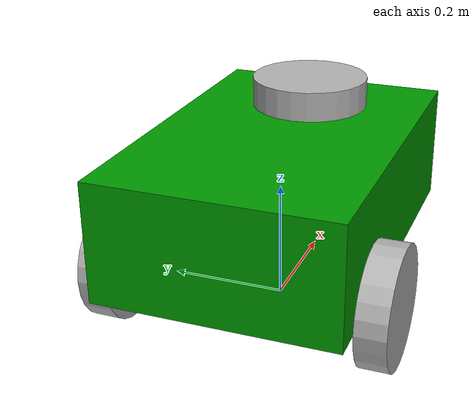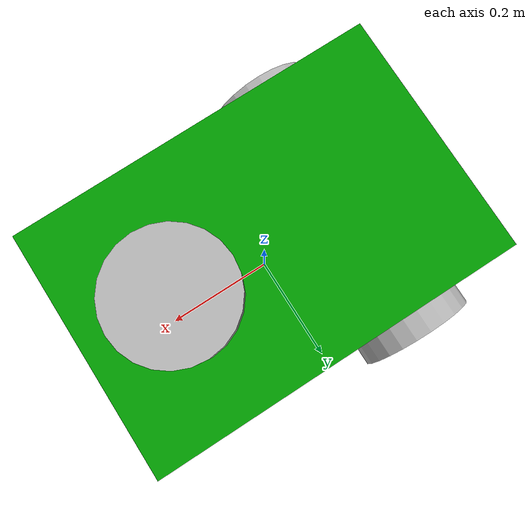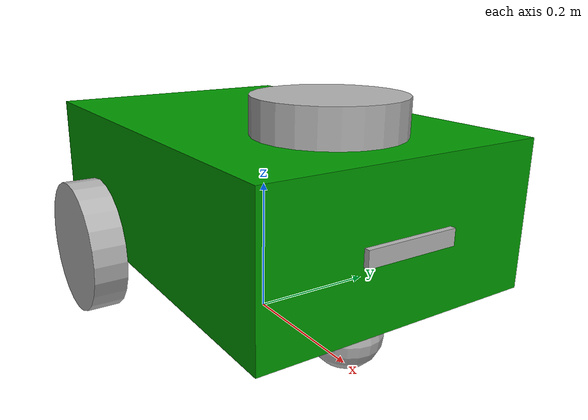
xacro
<?xml version="1.0"?>
<robot name="dd_robot" xmlns:xacro="http://www.ros.org/wiki/xacro">

    <xacro:include filename="$(find dd_robot)/urdf/common_properties.xacro" />
    <xacro:include filename="$(find dd_robot)/urdf/mobile_base.xacro" />
    <xacro:include filename="$(find dd_robot)/urdf/mobile_base_gazebo.xacro" />

</robot>

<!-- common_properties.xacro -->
<robot name="dd_robot" xmlns:xacro="http://www.ros.org/wiki/xacro">

    <material name="green">
        <color rgba="0 0.6 0 1" />
    </material>

    <material name="gray">
        <color rgba="0.7 0.7 0.7 1" />
    </material>

    <xacro:macro name="box_inertia" params="m x y z o_xyz o_rpy">
        <xacro:property name="ixx" value="${(m/12.0)*(y**2 + z**2)}"/>
        <xacro:property name="iyy" value="${(m/12.0)*(x**2 + z**2)}"/>
        <xacro:property name="izz" value="${(m/12.0)*(x**2 + y**2)}"/>

        <inertial>
            <mass value="${m}" />
            <origin xyz="${o_xyz}" rpy="${o_rpy}" />
            <inertia
                 ixx="${ixx}" ixy="0.0" ixz="0.0"
                 iyy="${iyy}" iyz="0.0"
                 izz="${izz}" />
        </inertial>
    </xacro:macro>

    <xacro:macro name="cylinder_inertia" params="m r l o_xyz o_rpy">
        <inertial>
            <mass value="${m}" />
            <origin xyz="${o_xyz}" rpy="${o_rpy}" />
            <inertia ixx="${(m/12) * (3*r*r + l*l)}" ixy="0" ixz="0"
                    iyy="${(m/12) * (3*r*r + l*l)}" iyz="0"
                    izz="${(m/2) * (r*r)}" />
        </inertial>
    </xacro:macro>

    <xacro:macro name="sphere_inertia" params="m r o_xyz o_rpy">
        <inertial>
            <mass value="${m}" />
            <origin xyz="${o_xyz}" rpy="${o_rpy}" />
            <inertia ixx="${(2/5) * m * r * r}" ixy="0" ixz="0"
                    iyy="${(2/5) * m * r * r}" iyz="0"
                    izz="${(2/5) * m * r * r}" />
        </inertial>
    </xacro:macro>

</robot>

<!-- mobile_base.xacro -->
<robot xmlns:xacro="http://www.ros.org/wiki/xacro">

    <xacro:property name="base_length" value="0.6" />
    <xacro:property name="base_width" value="0.4" />
    <xacro:property name="base_height" value="0.2" />
    <xacro:property name="wheel_radius" value="0.1" />
    <xacro:property name="wheel_length" value="0.05" />
    <xacro:property name="com_z" value="${base_height/2.0}"/>

    <link name ="base_footprint" />
    <link name="base_link">
        <visual>
            <geometry>
                <box size="0.6 0.4 0.2" />
            </geometry>
            <origin xyz="0 0 0.1" rpy="0 0 0" />
            <material name="green" />
        </visual>
        <collision>
            <geometry>
                <box size="0.6 0.4 0.2" />
            </geometry>
            <origin xyz="0 0 0.1" rpy="0 0 0" />
        </collision>
        <xacro:box_inertia m="5.0" x="0.6" y="0.4" z="0.2" o_xyz="0 0 0.1" o_rpy="0 0 0" />
    </link>

    <link name="right_wheel_link">
            <visual>
                <geometry>
                    <cylinder radius="0.1" length="0.05" />
                </geometry>
                <origin xyz="0 0 0" rpy="${pi / 2.0} 0 0" />
                <material name="gray" />
            </visual>
            <collision>
                <geometry>
                    <cylinder radius="0.1" length="0.05" />
                </geometry>
                <origin xyz="0 0 0" rpy="${pi / 2.0} 0 0" />
            </collision>
            <xacro:cylinder_inertia m="1.0" r="0.1" l="0.05"  o_xyz="0 0 0" o_rpy="${pi / 2.0} 0 0" />
    </link>

    <link name="left_wheel_link">
            <visual>
                <geometry>
                    <cylinder radius="0.1" length="0.05" />
                </geometry>
                <origin xyz="0 0 0" rpy="${pi / 2.0} 0 0" />
                <material name="gray" />
            </visual>
            <collision>
                <geometry>
                    <cylinder radius="0.1" length="0.05" />
                </geometry>
                <origin xyz="0 0 0" rpy="${pi / 2.0} 0 0" />
            </collision>
            <xacro:cylinder_inertia m="1.0" r="0.1" l="0.05" o_xyz="0 0 0" o_rpy="${pi / 2.0} 0 0" />
    </link>

    <link name="caster_wheel_link">
        <visual>
            <geometry>
                <sphere radius="0.05" />
            </geometry>
            <origin xyz="0 0 0" rpy="0 0 0" />
            <material name="gray" />
        </visual>
        <collision>
            <geometry>
                <sphere radius="0.05" />
            </geometry>
            <origin xyz="0 0 0" rpy="0 0 0" />
        </collision>
        <xacro:sphere_inertia m="0.5" r="0.05" o_xyz="0 0 0" o_rpy="0 0 0" />
    </link>

    <!--LIDAR LINK-->
    <link name="lidar_link">
        <visual>
            <geometry>
                <cylinder radius="0.1" length="0.05" />
            </geometry>
            <origin xyz="0 0 0" rpy="${pi} 0 0" />
            <material name="gray" />
        </visual>
        <collision>
            <geometry>
                <cylinder radius="0.1" length="0.05" />
            </geometry>
            <origin xyz="0 0 0" rpy="${pi} 0 0" />
        </collision>
        <xacro:cylinder_inertia m="1.0" r="0.1" l="0.1" o_xyz="0 0 0" o_rpy="${pi} 0 0" />
    </link>

    <!--IMU LINK-->

    <link name="imu_link">
      <visual>
         <geometry>
            <box size="0.1 0.1 0.1"/>
         </geometry>
         <origin xyz="0 0 0" rpy="0 0 0"/>
         <material name="gray"/>
      </visual>

      <collision>
          <geometry>
             <box size="0.1 0.1 0.1"/>
          </geometry>
          <origin xyz="0 0 0" rpy="0 0 0"/>
      </collision>

      <inertial>
         <mass value="0.1"/>
         <origin xyz="0 0 0" rpy="0 0 0"/>
         <inertia ixx="0.00033" iyy="0.00033" izz="0.00033" ixy="0" ixz="0" iyz="0"/>
      </inertial>
    </link>

    <joint name="imu_joint" type="fixed">
       <parent link="base_link"/>
       <child link="imu_link"/>
       <origin xyz="0 0 0.1" rpy="0 0 0"/>
    </joint>

    <!--CAMERA LINK-->
    <link name="camera_link">
         <visual>
            <origin xyz="0 0 0" rpy="0 0 0"/>
            <geometry>
                <box size="0.015 0.130 0.022"/>
            </geometry>
         </visual>

         <collision>
            <origin xyz="0 0 0" rpy="0 0 0"/>
            <geometry>
                <box size="0.015 0.130 0.022"/>
            </geometry>
         </collision>

         <inertial>
            <origin xyz="0 0 0" rpy="0 0 0"/>
            <mass value="0.035"/>
            <inertia ixx="0.001"  ixy="0"  ixz="0" iyy="0.001" iyz="0" izz="0.001" />
         </inertial>
    </link>

    <joint name="camera_joint" type="fixed">
        <parent link="base_link"/>
        <child link="camera_link"/>
        <origin xyz="0.3 0 0.1" rpy="0 0 0"/>
    </joint>

    <link name="camera_depth_frame"/>

    <joint name="camera_depth_joint" type="fixed">
         <origin xyz="0 0 0" rpy="${-pi/2} 0 ${-pi/2}"/>
         <parent link="camera_link"/>
         <child link="camera_depth_frame"/>
    </joint>

    <joint name = "base_joint" type ="fixed">
        <parent link="base_footprint" />
        <child link = "base_link" />
        <origin xyz = "0 0 0.1" rpy ="0 0 0" />
    </joint>

    <joint name="right_wheel_joint" type="continuous">
        <parent link="base_link" />
        <child link="right_wheel_link" />
        <origin xyz="-0.15 -0.225 0" rpy="0 0 0" />
        <axis xyz="0 1 0" />
    </joint>

    <joint name="left_wheel_joint" type="continuous">
        <parent link="base_link" />
        <child link="left_wheel_link" />
        <origin xyz="-0.15 0.225 0" rpy="0 0 0" />
        <axis xyz="0 1 0" />
    </joint>

    <joint name="base_lidar_joint" type="fixed">
        <parent link="base_link" />
        <child link="lidar_link" />
        <origin xyz="0.15 0 0.225" rpy="0 0 0" />
        <axis xyz="0 1 0" />
    </joint>

    <joint name="base_caster_wheel_joint" type="fixed">
        <parent link="base_link" />
        <child link="caster_wheel_link" />
        <origin xyz="0.2 0 -0.05" rpy="0 0 0" />
    </joint>

</robot>
